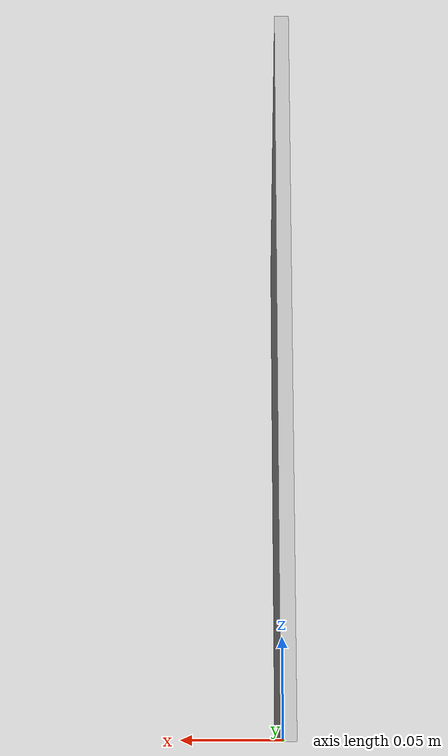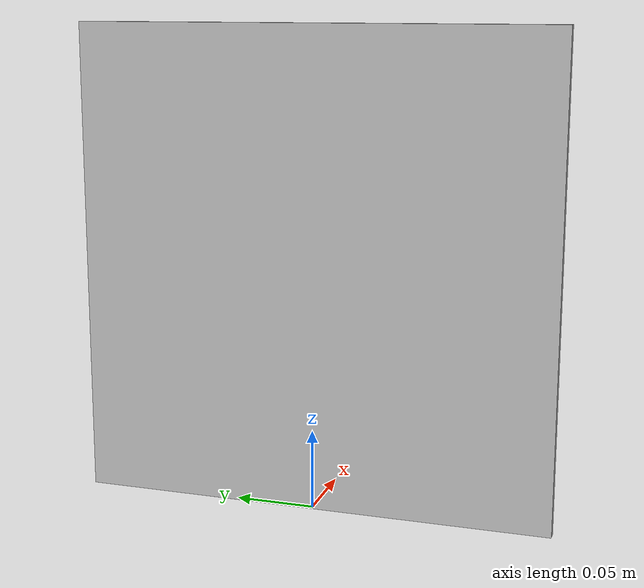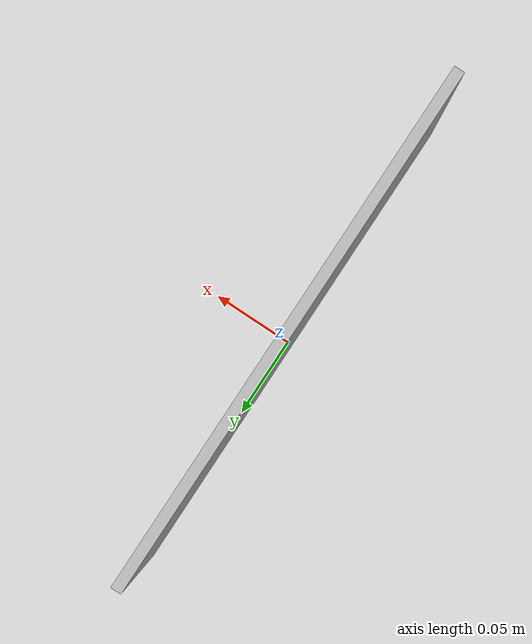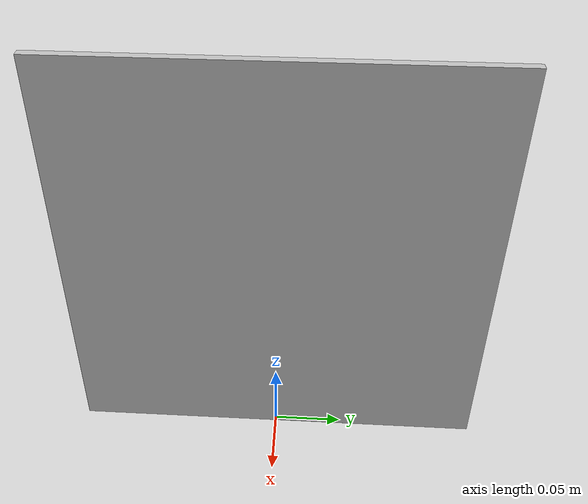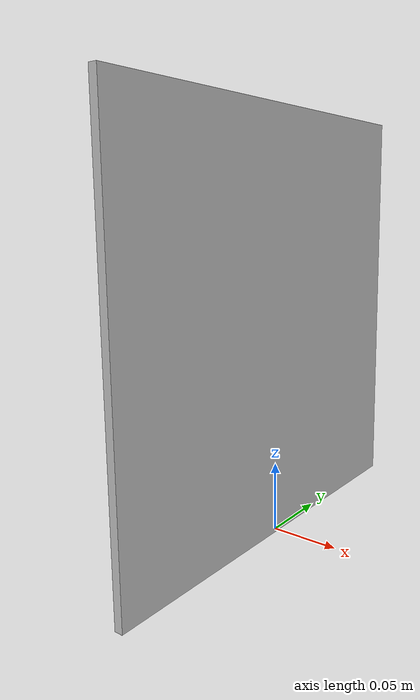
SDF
<?xml version="1.0" ?><sdf version="1.6">
  <model name="reduced_rubble_small2">
    <static>true</static>
    <link name="link">
      <visual name="visual">
        <geometry>
          <mesh>
            <uri>model://reduced_rubble_small2/meshes/reduced_rubble_small2.dae</uri>
          <scale>0.6 0.6 0.6</scale></mesh>
        </geometry>
      </visual>
      <collision name="collision">
        <geometry>
          <mesh>
            <uri>model://reduced_rubble_small2/meshes/reduced_rubble_small2.dae</uri>
          <scale>0.6 0.6 0.6</scale></mesh>
        </geometry>
      </collision>
    </link>
  </model>
</sdf>
